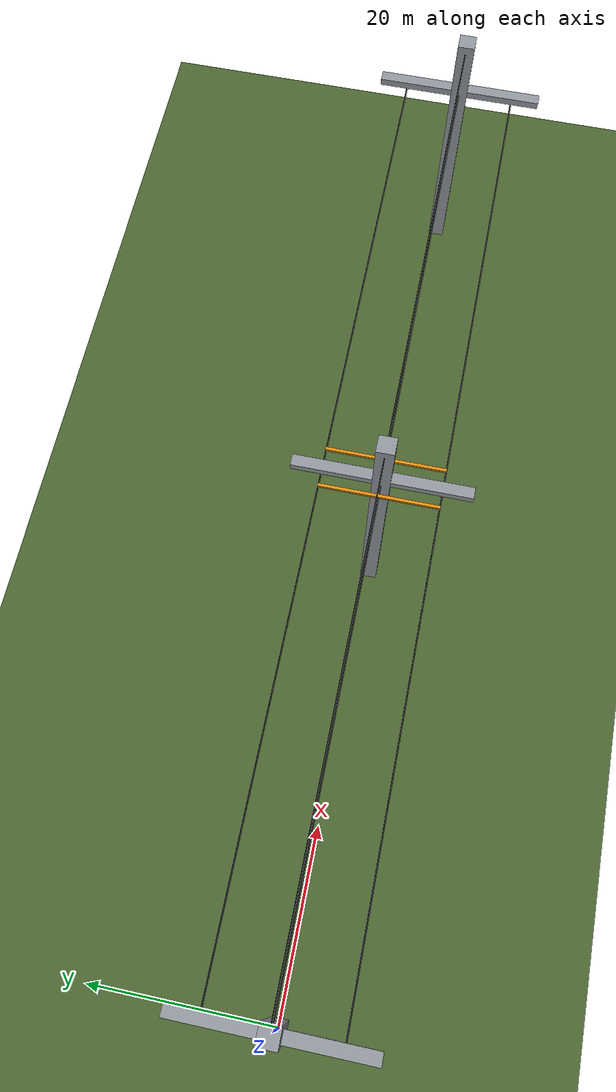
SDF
<?xml version="1.0" ?>
<sdf version="1.9">
  <world name="lineguard_powerline">
    <physics name="1ms" type="ignored">
      <max_step_size>0.001</max_step_size>
      <real_time_factor>1.0</real_time_factor>
    </physics>

    <plugin
      filename="gz-sim-physics-system"
      name="gz::sim::systems::Physics"/>
    <plugin
      filename="gz-sim-user-commands-system"
      name="gz::sim::systems::UserCommands"/>
    <plugin
      filename="gz-sim-scene-broadcaster-system"
      name="gz::sim::systems::SceneBroadcaster"/>

    <gravity>0 0 -9.8</gravity>
    <wind>
      <linear_velocity>8 1 0</linear_velocity>
    </wind>

    <light type="directional" name="sun">
      <cast_shadows>true</cast_shadows>
      <pose>0 0 100 0 0 0</pose>
      <diffuse>0.9 0.9 0.9 1</diffuse>
      <specular>0.2 0.2 0.2 1</specular>
      <direction>-0.4 0.2 -1</direction>
    </light>

    <model name="ground">
      <static>true</static>
      <link name="ground_link">
        <collision name="ground_collision">
          <geometry>
            <plane>
              <normal>0 0 1</normal>
              <size>500 300</size>
            </plane>
          </geometry>
        </collision>
        <visual name="ground_visual">
          <geometry>
            <plane>
              <normal>0 0 1</normal>
              <size>500 300</size>
            </plane>
          </geometry>
          <material>
            <ambient>0.18 0.25 0.12 1</ambient>
            <diffuse>0.28 0.38 0.18 1</diffuse>
          </material>
        </visual>
      </link>
    </model>

    <model name="tower_3">
      <static>true</static>
      <pose>0 0 0 0 0 0</pose>
      <link name="structure">
        <visual name="mast">
          <pose>0 0 16 0 0 0</pose>
          <geometry><box><size>1.8 1.8 32</size></box></geometry>
          <material>
            <ambient>0.35 0.37 0.40 1</ambient>
            <diffuse>0.55 0.57 0.60 1</diffuse>
          </material>
        </visual>
        <visual name="crossarm">
          <pose>0 0 25 0 0 0</pose>
          <geometry><box><size>1.2 18 0.8</size></box></geometry>
          <material><diffuse>0.55 0.57 0.60 1</diffuse></material>
        </visual>
      </link>
    </model>

    <model name="tower_4">
      <static>true</static>
      <pose>50 0 0 0 0 0</pose>
      <link name="structure">
        <visual name="mast">
          <pose>0 0 16 0 0 0</pose>
          <geometry><box><size>1.8 1.8 32</size></box></geometry>
          <material><diffuse>0.55 0.57 0.60 1</diffuse></material>
        </visual>
        <visual name="crossarm">
          <pose>0 0 25 0 0 0</pose>
          <geometry><box><size>1.2 18 0.8</size></box></geometry>
          <material><diffuse>0.55 0.57 0.60 1</diffuse></material>
        </visual>
      </link>
    </model>

    <model name="tower_5">
      <static>true</static>
      <pose>100 0 0 0 0 0</pose>
      <link name="structure">
        <visual name="mast">
          <pose>0 0 16 0 0 0</pose>
          <geometry><box><size>1.8 1.8 32</size></box></geometry>
          <material><diffuse>0.55 0.57 0.60 1</diffuse></material>
        </visual>
        <visual name="crossarm">
          <pose>0 0 25 0 0 0</pose>
          <geometry><box><size>1.2 18 0.8</size></box></geometry>
          <material><diffuse>0.55 0.57 0.60 1</diffuse></material>
        </visual>
      </link>
    </model>

    <model name="conductors">
      <static>true</static>
      <link name="lines">
        <visual name="left_conductor">
          <pose>50 -6 24 0 1.570796 0</pose>
          <geometry><cylinder><radius>0.08</radius><length>100</length></cylinder></geometry>
          <material><diffuse>0.08 0.08 0.08 1</diffuse></material>
        </visual>
        <visual name="center_conductor">
          <pose>50 0 25 0 1.570796 0</pose>
          <geometry><cylinder><radius>0.08</radius><length>100</length></cylinder></geometry>
          <material><diffuse>0.08 0.08 0.08 1</diffuse></material>
        </visual>
        <visual name="right_conductor">
          <pose>50 6 24 0 1.570796 0</pose>
          <geometry><cylinder><radius>0.08</radius><length>100</length></cylinder></geometry>
          <material><diffuse>0.08 0.08 0.08 1</diffuse></material>
        </visual>
        <visual name="ground_wire">
          <pose>50 0 31 0 1.570796 0</pose>
          <geometry><cylinder><radius>0.05</radius><length>100</length></cylinder></geometry>
          <material><diffuse>0.18 0.18 0.18 1</diffuse></material>
        </visual>
        <visual name="spacer_1">
          <pose>48 0 25 0 0 0</pose>
          <geometry><box><size>0.3 12 0.3</size></box></geometry>
          <material><diffuse>0.9 0.55 0.05 1</diffuse></material>
        </visual>
        <visual name="spacer_2">
          <pose>52 0 25 0 0 0</pose>
          <geometry><box><size>0.3 12 0.3</size></box></geometry>
          <material><diffuse>0.9 0.55 0.05 1</diffuse></material>
        </visual>
      </link>
    </model>
  </world>
</sdf>
